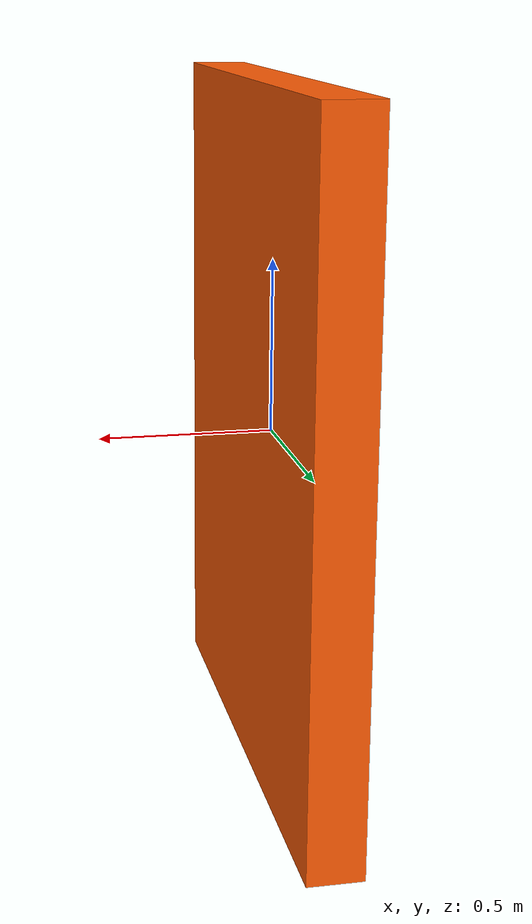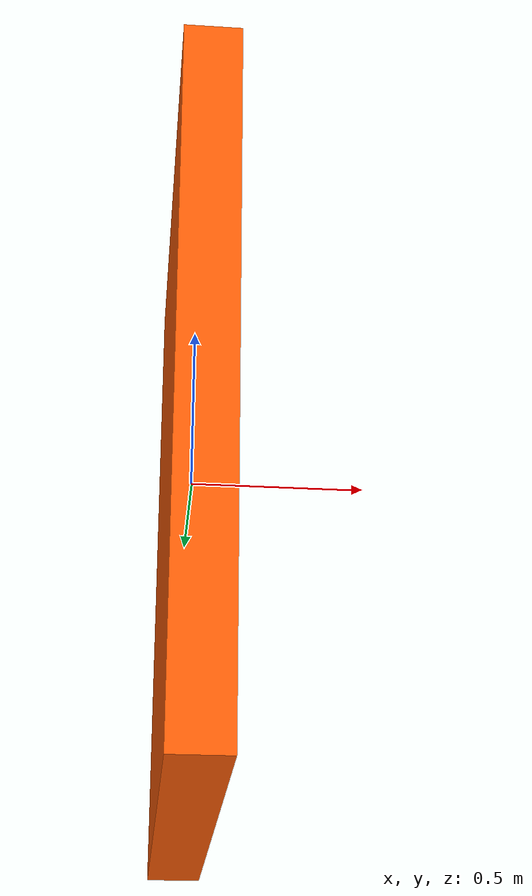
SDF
<?xml version="1.0"?>
<sdf version="1.9">
  <model name="dtu_barricade">
    <static>true</static>
    <link name="barricade_link">
      <collision name="collision">
        <geometry>
          <box>
            <size>0.16 1.60 2.00</size>
          </box>
        </geometry>
        <surface>
          <friction>
            <ode>
              <mu>1.0</mu>
              <mu2>1.0</mu2>
            </ode>
          </friction>
        </surface>
      </collision>
      <visual name="visual">
        <geometry>
          <box>
            <size>0.16 1.60 2.00</size>
          </box>
        </geometry>
        <material>
          <ambient>1.0 0.28 0.0 1.0</ambient>
          <diffuse>1.0 0.36 0.02 1.0</diffuse>
          <specular>0.15 0.15 0.15 1.0</specular>
        </material>
      </visual>
    </link>
  </model>
</sdf>
